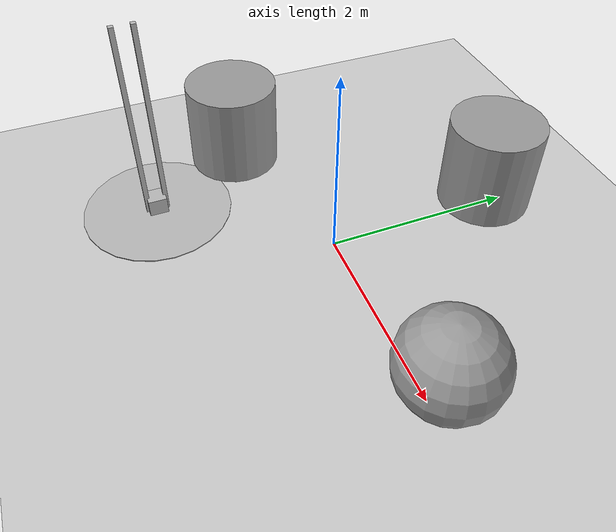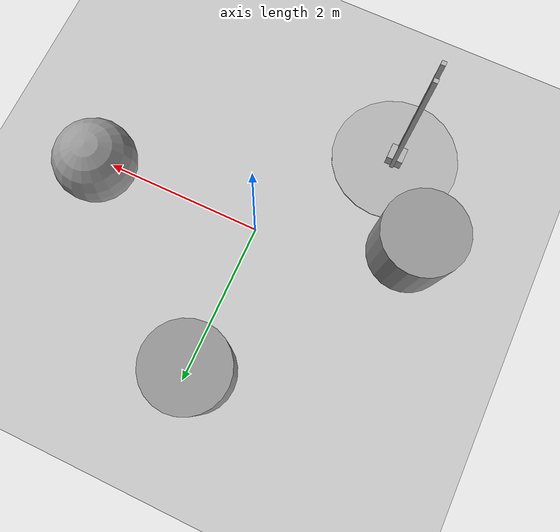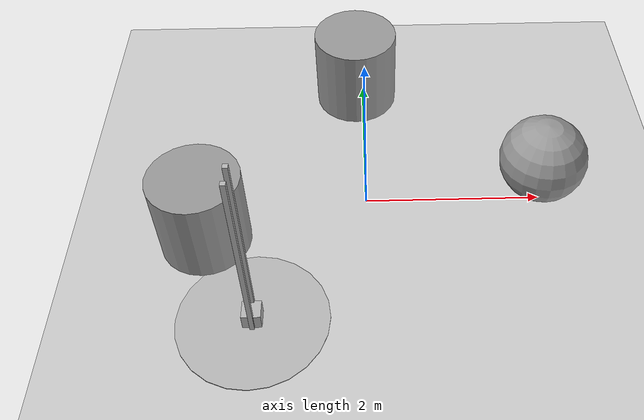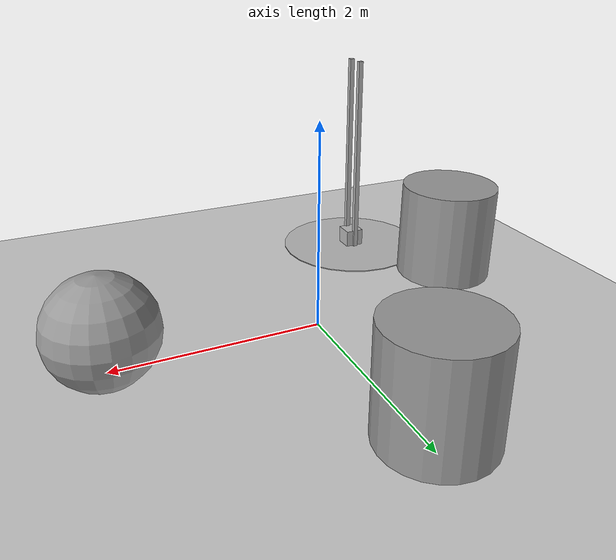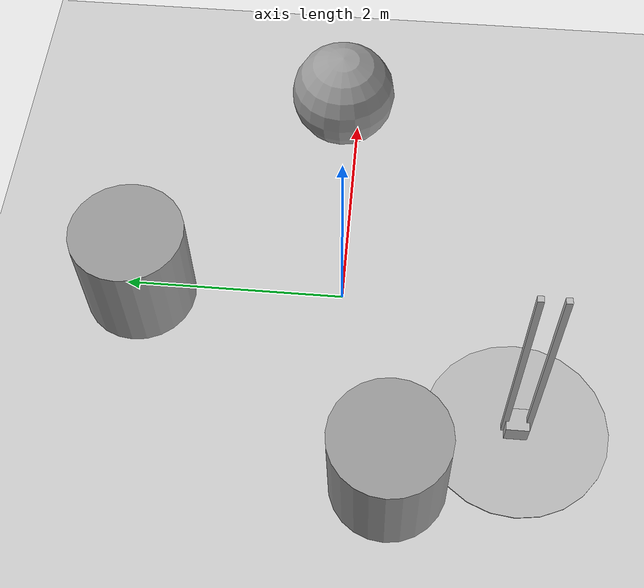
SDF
<sdf version="1.7">
 <world name="default">
  <light name="sun" type="directional">
   <pose>0 0 10 0 -0 0</pose>
   <diffuse>0.8 0.8 0.8 1</diffuse>
   <specular>0.2 0.2 0.2 1</specular>
   <attenuation>
    <range>1000</range>
    <constant>0.9</constant>
    <linear>0.01</linear>
    <quadratic>0.001</quadratic>
   </attenuation>
   <direction>-0.5 0.1 -0.9</direction>
   <spot><inner_angle>0</inner_angle><outer_angle>0</outer_angle><falloff>0</falloff></spot>
  </light>
  <model name="ground_plane">
   <static>1</static>
   <link name="link">
    <collision name="collision">
     <geometry><plane><normal>0 0 1</normal><size>100 100</size></plane></geometry>
     <surface>
      <contact><collide_bitmask>65535</collide_bitmask></contact>
      <friction><ode><mu>100</mu><mu2>50</mu2></ode></friction>
     </surface>
    </collision>
    <visual name="visual">
     <cast_shadows>0</cast_shadows>
     <geometry><plane><normal>0 0 1</normal><size>100 100</size></plane></geometry>
     <material>
      <script><uri>file://media/materials/scripts/gazebo.material</uri><name>Gazebo/Grey</name></script>
     </material>
    </visual>
   </link>
  </model>
  <gravity>0 0 -9.8</gravity>
  <magnetic_field>6e-06 2.3e-05 -4.2e-05</magnetic_field>
  <atmosphere type="adiabatic"/>
  <physics type="ode">
   <max_step_size>0.001</max_step_size>
   <real_time_factor>1</real_time_factor>
   <real_time_update_rate>1000</real_time_update_rate>
  </physics>
  <scene><ambient>0.4 0.4 0.4 1</ambient><background>0.7 0.7 0.7 1</background><shadows>1</shadows></scene>
  <audio><device>default</device></audio>
  <spherical_coordinates>
   <surface_model>EARTH_WGS84</surface_model>
   <latitude_deg>0</latitude_deg>
   <longitude_deg>0</longitude_deg>
   <elevation>0</elevation>
   <heading_deg>0</heading_deg>
  </spherical_coordinates>
  <model name="unit_cylinder">
   <pose>-1.7915 -0.515103 0.508127 -0.014232 -0.008168 -0.000197</pose>
   <link name="link">
    <inertial>
     <mass>1</mass>
     <inertia><ixx>0.145833</ixx><ixy>0</ixy><ixz>0</ixz><iyy>0.145833</iyy><iyz>0</iyz><izz>0.125</izz></inertia>
    </inertial>
    <collision name="collision">
     <geometry><cylinder><radius>0.5</radius><length>1</length></cylinder></geometry>
    </collision>
    <visual name="visual">
     <geometry><cylinder><radius>0.5</radius><length>1</length></cylinder></geometry>
     <material>
      <script><name>Gazebo/Grey</name><uri>file://media/materials/scripts/gazebo.material</uri></script>
     </material>
    </visual>
   </link>
  </model>
  <model name="unit_sphere">
   <pose>2.02039 0.146785 0.5 0 -0 0</pose>
   <link name="link">
    <inertial>
     <mass>1</mass>
     <inertia><ixx>0.1</ixx><ixy>0</ixy><ixz>0</ixz><iyy>0.1</iyy><iyz>0</iyz><izz>0.1</izz></inertia>
    </inertial>
    <collision name="collision"><geometry><sphere><radius>0.5</radius></sphere></geometry></collision>
    <visual name="visual">
     <geometry><sphere><radius>0.5</radius></sphere></geometry>
     <material>
      <script><name>Gazebo/Grey</name><uri>file://media/materials/scripts/gazebo.material</uri></script>
     </material>
    </visual>
   </link>
  </model>
  <model name="unit_cylinder_0">
   <pose>-0.091459 1.8471 0.499992 -4e-06 4e-06 0</pose>
   <link name="link">
    <inertial>
     <mass>1</mass>
     <inertia><ixx>0.145833</ixx><ixy>0</ixy><ixz>0</ixz><iyy>0.145833</iyy><iyz>0</iyz><izz>0.125</izz></inertia>
    </inertial>
    <collision name="collision">
     <geometry><cylinder><radius>0.5</radius><length>1</length></cylinder></geometry>
    </collision>
    <visual name="visual">
     <geometry><cylinder><radius>0.5</radius><length>1</length></cylinder></geometry>
     <material>
      <script><name>Gazebo/Grey</name><uri>file://media/materials/scripts/gazebo.material</uri></script>
     </material>
    </visual>
   </link>
  </model>
  <model name="mass_on_rails">
   <link name="base">
    <inertial>
     <mass>100</mass>
     <inertia><ixx>1</ixx><ixy>0</ixy><ixz>0</ixz><iyy>1</iyy><iyz>0</iyz><izz>1</izz></inertia>
    </inertial>
    <visual name="vis_base">
     <pose>0 0 0.01 0 -0 0</pose>
     <geometry><cylinder><radius>0.8</radius><length>0.01</length></cylinder></geometry>
    </visual>
    <collision name="col_base">
     <pose>0 0 0.01 0 -0 0</pose>
     <geometry><cylinder><radius>0.8</radius><length>0.01</length></cylinder></geometry>
    </collision>
    <visual name="vis_rail1">
     <pose>0 0.1 1.1 0 -0 0</pose>
     <geometry><box><size>0.05 0.05 2.2</size></box></geometry>
    </visual>
    <collision name="col_rail1">
     <pose>0 0.1 1.1 0 -0 0</pose>
     <geometry><box><size>0.05 0.05 2.2</size></box></geometry>
    </collision>
    <visual name="vis_rail2">
     <pose>0 -0.1 1.1 0 -0 0</pose>
     <geometry><box><size>0.05 0.05 2.2</size></box></geometry>
    </visual>
    <collision name="col_rail2">
     <pose>0 -0.1 1.1 0 -0 0</pose>
     <geometry><box><size>0.05 0.05 2.2</size></box></geometry>
    </collision>
   </link>
   <link name="mass">
    <inertial>
     <mass>0.1</mass>
     <pose>0 0 0.1 0 -0 0</pose>
     <inertia><ixx>0.00067</ixx><ixy>0</ixy><ixz>0</ixz><iyy>0.00067</iyy><iyz>0</iyz><izz>0.00067</izz></inertia>
    </inertial>
    <visual name="visual">
     <pose>0 0 0.1 0 -0 0</pose>
     <geometry><box><size>0.2 0.2 0.2</size></box></geometry>
    </visual>
    <collision name="collision">
     <pose>0 0 0.1 0 -0 0</pose>
     <geometry><box><size>0.2 0.2 0.2</size></box></geometry>
    </collision>
   </link>
   <joint name="joint" type="prismatic">
    <parent>base</parent>
    <child>mass</child>
    <axis>
     <dynamics>
      <damping>0.01</damping>
      <friction>0.01</friction>
      <spring_reference>0</spring_reference>
      <spring_stiffness>0</spring_stiffness>
     </dynamics>
     <xyz>0 0 1</xyz>
     <limit><lower>0</lower><upper>2</upper></limit>
    </axis>
   </joint>
   <pose>-1.19749 -1.5872 -0 0 -0 -2.8e-05</pose>
  </model>
 </world>
</sdf>
